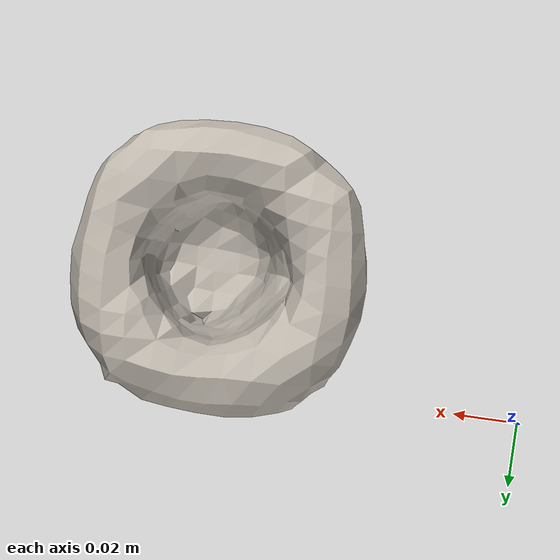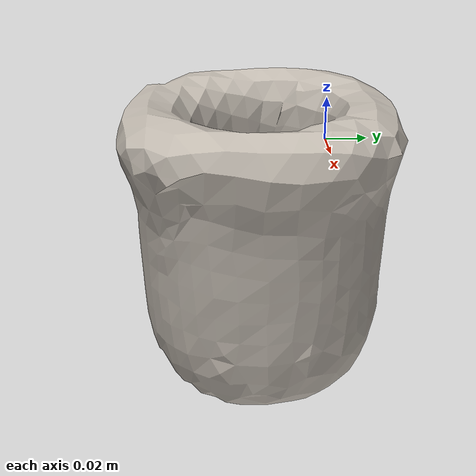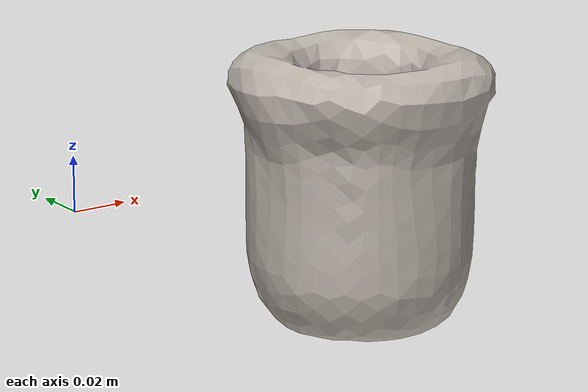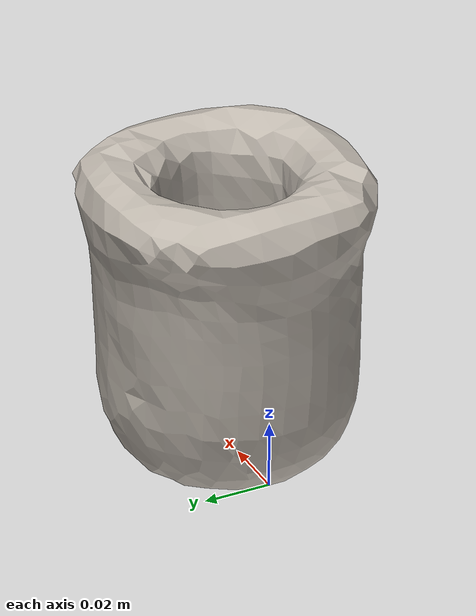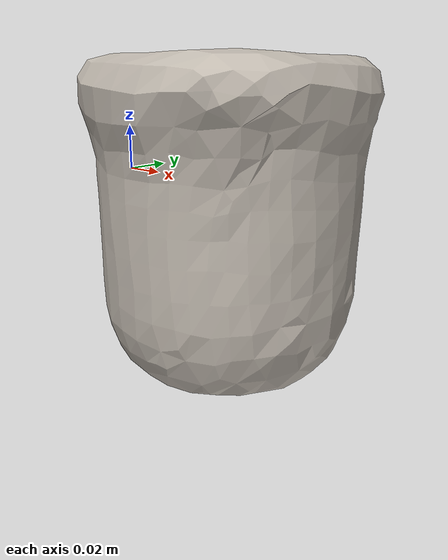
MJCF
<mujoco model="cup_065-a_cups_M">
  <asset>
    <mesh file="meshes/cup_065-a_cups_M.stl" name="cup_mesh" scale="0.7651911602106631 0.7651911602106631 0.7651911602106631"/>
    <texture type="cube" file="/home/jbw/Projects/gc-reorientation/bin_env/assets/textures/ceramic.png" rgb1="1 1 1" name="tex-cup"/>
    <material name="cup" reflectance="0.5" texrepeat="3 3" texture="tex-cup"/>
  </asset>
  <worldbody>
    <body>
      <body name="object">
        <geom pos="0.09774477357330186 -0.03438219012932655 -2.544409146919988e-05" quat="1 0 0 0" mesh="cup_mesh" type="mesh" solref="0.02 1" density="0" friction="1.0 1.0 1.0" material="cup" group="0" condim="4"/>
      </body>
      <site rgba="0 0 0 0" size="0.005" pos="0 0 -0.05" name="bottom_site"/>
      <site rgba="0 0 0 0" size="0.005" pos="0 0 0.03" name="top_site"/>
      <site rgba="0 0 0 0" size="0.005" pos="0.02 0.015 0" name="horizontal_radius_site"/>
    </body>
  </worldbody>
</mujoco>
